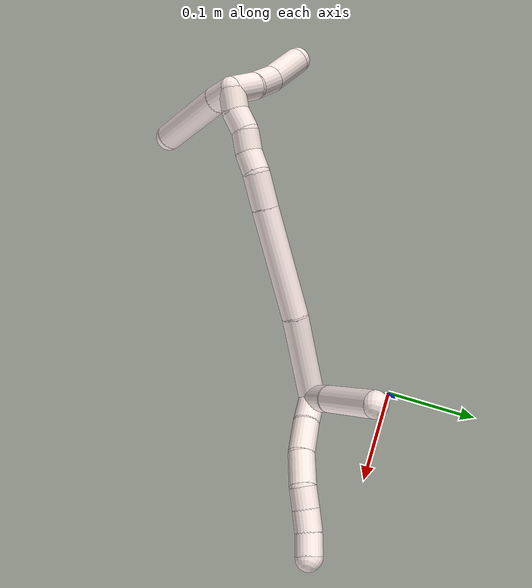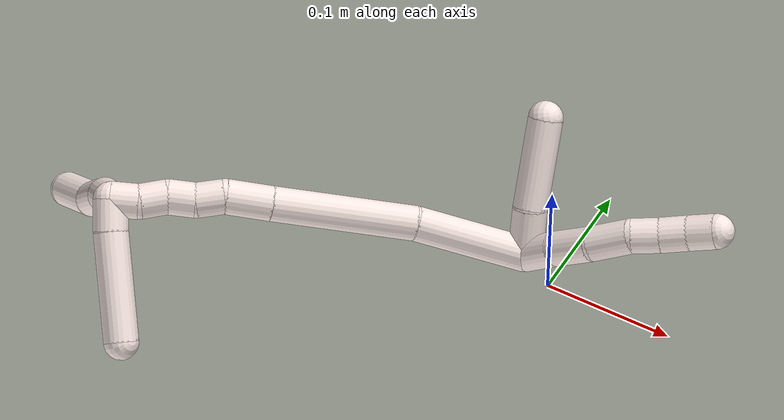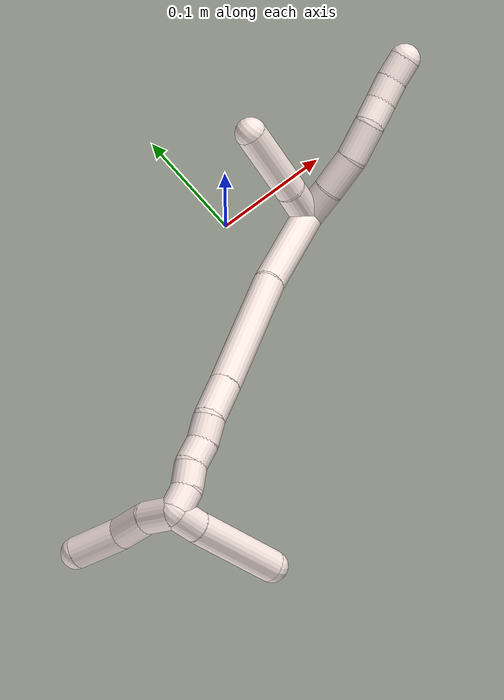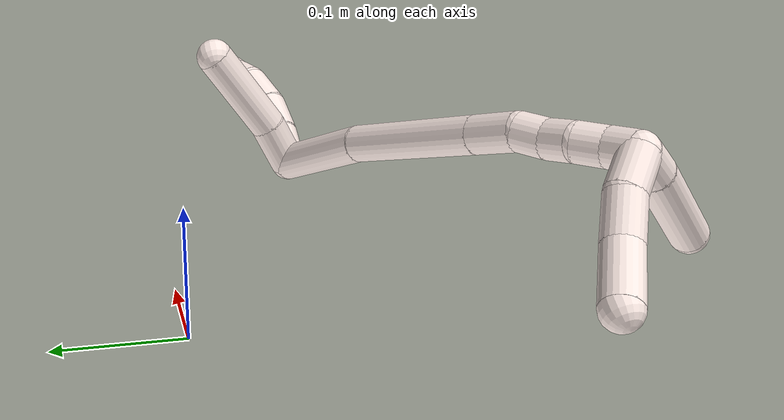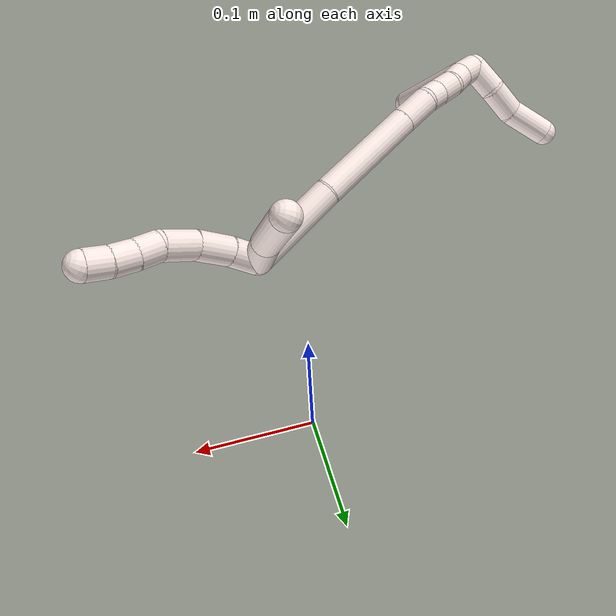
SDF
<sdf version="1.7">
 <world name="default">
  <model name="11">
   <static>0</static>
   <link name="11">
    <collision name="collision-cylinder-e_1_2_8">
     <pose>0.000323 -3.4e-05 -0.014005 3.13918 0.023061 2.93281</pose>
     <geometry><cylinder><radius>0.0125</radius><length>0.028017</length></cylinder></geometry>
     <surface>
      <friction><ode><mu>1.16</mu><mu2>1.16</mu2><slip1>0</slip1><slip2>0</slip2></ode></friction>
      <contact><ode><kp>1e+06</kp><kd>1</kd><max_vel>0</max_vel><min_depth>0.001</min_depth></ode></contact>
     </surface>
    </collision>
    <visual name="visual-cylinder-e_1_2_8">
     <pose>0.000323 -3.4e-05 -0.014005 3.13918 0.023061 2.93281</pose>
     <geometry><cylinder><radius>0.0125</radius><length>0.028017</length></cylinder></geometry>
     <material><ambient>1 0.933333 0.909804 1</ambient></material>
    </visual>
    <collision name="collision-cylinder-e_2_8_9">
     <pose>0.002791 -0.000119 -0.04329 3.13822 0.139453 3.09333</pose>
     <geometry><cylinder><radius>0.0125</radius><length>0.030861</length></cylinder></geometry>
     <surface>
      <friction><ode><mu>1.16</mu><mu2>1.16</mu2><slip1>0</slip1><slip2>0</slip2></ode></friction>
      <contact><ode><kp>1e+06</kp><kd>1</kd><max_vel>0</max_vel><min_depth>0.001</min_depth></ode></contact>
     </surface>
    </collision>
    <visual name="visual-cylinder-e_2_8_9">
     <pose>0.002791 -0.000119 -0.04329 3.13822 0.139453 3.09333</pose>
     <geometry><cylinder><radius>0.0125</radius><length>0.030861</length></cylinder></geometry>
     <material><ambient>1 0.933333 0.909804 1</ambient></material>
    </visual>
    <collision name="collision-cylinder-e_3_9_10">
     <pose>0.009642 -0.002012 -0.07309 3.01547 0.311096 2.37599</pose>
     <geometry><cylinder><radius>0.0125</radius><length>0.030747</length></cylinder></geometry>
     <surface>
      <friction><ode><mu>1.16</mu><mu2>1.16</mu2><slip1>0</slip1><slip2>0</slip2></ode></friction>
      <contact><ode><kp>1e+06</kp><kd>1</kd><max_vel>0</max_vel><min_depth>0.001</min_depth></ode></contact>
     </surface>
    </collision>
    <visual name="visual-cylinder-e_3_9_10">
     <pose>0.009642 -0.002012 -0.07309 3.01547 0.311096 2.37599</pose>
     <geometry><cylinder><radius>0.0125</radius><length>0.030747</length></cylinder></geometry>
     <material><ambient>1 0.933333 0.909804 1</ambient></material>
    </visual>
    <collision name="collision-cylinder-e_4_10_11">
     <pose>0.02026 -0.004296 -0.095745 3.08714 0.627751 2.97418</pose>
     <geometry><cylinder><radius>0.0125</radius><length>0.020133</length></cylinder></geometry>
     <surface>
      <friction><ode><mu>1.16</mu><mu2>1.16</mu2><slip1>0</slip1><slip2>0</slip2></ode></friction>
      <contact><ode><kp>1e+06</kp><kd>1</kd><max_vel>0</max_vel><min_depth>0.001</min_depth></ode></contact>
     </surface>
    </collision>
    <visual name="visual-cylinder-e_4_10_11">
     <pose>0.02026 -0.004296 -0.095745 3.08714 0.627751 2.97418</pose>
     <geometry><cylinder><radius>0.0125</radius><length>0.020133</length></cylinder></geometry>
     <material><ambient>1 0.933333 0.909804 1</ambient></material>
    </visual>
    <collision name="collision-cylinder-e_5_11_12">
     <pose>0.031384 -0.005483 -0.112509 3.05567 0.541697 2.83439</pose>
     <geometry><cylinder><radius>0.0125</radius><length>0.020216</length></cylinder></geometry>
     <surface>
      <friction><ode><mu>1.16</mu><mu2>1.16</mu2><slip1>0</slip1><slip2>0</slip2></ode></friction>
      <contact><ode><kp>1e+06</kp><kd>1</kd><max_vel>0</max_vel><min_depth>0.001</min_depth></ode></contact>
     </surface>
    </collision>
    <visual name="visual-cylinder-e_5_11_12">
     <pose>0.031384 -0.005483 -0.112509 3.05567 0.541697 2.83439</pose>
     <geometry><cylinder><radius>0.0125</radius><length>0.020216</length></cylinder></geometry>
     <material><ambient>1 0.933333 0.909804 1</ambient></material>
    </visual>
    <collision name="collision-cylinder-e_6_12_6">
     <pose>0.040687 -0.006417 -0.130275 3.12066 0.420939 3.04366</pose>
     <geometry><cylinder><radius>0.0125</radius><length>0.020026</length></cylinder></geometry>
     <surface>
      <friction><ode><mu>1.16</mu><mu2>1.16</mu2><slip1>0</slip1><slip2>0</slip2></ode></friction>
      <contact><ode><kp>1e+06</kp><kd>1</kd><max_vel>0</max_vel><min_depth>0.001</min_depth></ode></contact>
     </surface>
    </collision>
    <visual name="visual-cylinder-e_6_12_6">
     <pose>0.040687 -0.006417 -0.130275 3.12066 0.420939 3.04366</pose>
     <geometry><cylinder><radius>0.0125</radius><length>0.020026</length></cylinder></geometry>
     <material><ambient>1 0.933333 0.909804 1</ambient></material>
    </visual>
    <collision name="collision-cylinder-e_1_2_13">
     <pose>-0.006501 -0.014275 -0.007456 2.05216 -0.383687 -0.620479</pose>
     <geometry><cylinder><radius>0.0125</radius><length>0.034735</length></cylinder></geometry>
     <surface>
      <friction><ode><mu>1.16</mu><mu2>1.16</mu2><slip1>0</slip1><slip2>0</slip2></ode></friction>
      <contact><ode><kp>1e+06</kp><kd>1</kd><max_vel>0</max_vel><min_depth>0.001</min_depth></ode></contact>
     </surface>
    </collision>
    <visual name="visual-cylinder-e_1_2_13">
     <pose>-0.006501 -0.014275 -0.007456 2.05216 -0.383687 -0.620479</pose>
     <geometry><cylinder><radius>0.0125</radius><length>0.034735</length></cylinder></geometry>
     <material><ambient>1 0.933333 0.909804 1</ambient></material>
    </visual>
    <collision name="collision-cylinder-e_2_13_5">
     <pose>-0.020923 -0.057477 -0.02777 1.98904 -0.245169 -0.37472</pose>
     <geometry><cylinder><radius>0.0125</radius><length>0.065265</length></cylinder></geometry>
     <surface>
      <friction><ode><mu>1.16</mu><mu2>1.16</mu2><slip1>0</slip1><slip2>0</slip2></ode></friction>
      <contact><ode><kp>1e+06</kp><kd>1</kd><max_vel>0</max_vel><min_depth>0.001</min_depth></ode></contact>
     </surface>
    </collision>
    <visual name="visual-cylinder-e_2_13_5">
     <pose>-0.020923 -0.057477 -0.02777 1.98904 -0.245169 -0.37472</pose>
     <geometry><cylinder><radius>0.0125</radius><length>0.065265</length></cylinder></geometry>
     <material><ambient>1 0.933333 0.909804 1</ambient></material>
    </visual>
    <collision name="collision-cylinder-e_1_2_14">
     <pose>-0.036522 -0.005646 0.019062 0.287948 -1.07231 -0.17187</pose>
     <geometry><cylinder><radius>0.0125</radius><length>0.083164</length></cylinder></geometry>
     <surface>
      <friction><ode><mu>1.16</mu><mu2>1.16</mu2><slip1>0</slip1><slip2>0</slip2></ode></friction>
      <contact><ode><kp>1e+06</kp><kd>1</kd><max_vel>0</max_vel><min_depth>0.001</min_depth></ode></contact>
     </surface>
    </collision>
    <visual name="visual-cylinder-e_1_2_14">
     <pose>-0.036522 -0.005646 0.019062 0.287948 -1.07231 -0.17187</pose>
     <geometry><cylinder><radius>0.0125</radius><length>0.083164</length></cylinder></geometry>
     <material><ambient>1 0.933333 0.909804 1</ambient></material>
    </visual>
    <collision name="collision-cylinder-e_2_14_15">
     <pose>-0.116797 -0.012288 0.065693 0.036135 -1.00824 -0.019936</pose>
     <geometry><cylinder><radius>0.0125</radius><length>0.103448</length></cylinder></geometry>
     <surface>
      <friction><ode><mu>1.16</mu><mu2>1.16</mu2><slip1>0</slip1><slip2>0</slip2></ode></friction>
      <contact><ode><kp>1e+06</kp><kd>1</kd><max_vel>0</max_vel><min_depth>0.001</min_depth></ode></contact>
     </surface>
    </collision>
    <visual name="visual-cylinder-e_2_14_15">
     <pose>-0.116797 -0.012288 0.065693 0.036135 -1.00824 -0.019936</pose>
     <geometry><cylinder><radius>0.0125</radius><length>0.103448</length></cylinder></geometry>
     <material><ambient>1 0.933333 0.909804 1</ambient></material>
    </visual>
    <collision name="collision-cylinder-e_3_15_16">
     <pose>-0.174475 -0.013912 0.102174 0.070306 -1.00039 -0.038437</pose>
     <geometry><cylinder><radius>0.0125</radius><length>0.03309</length></cylinder></geometry>
     <surface>
      <friction><ode><mu>1.16</mu><mu2>1.16</mu2><slip1>0</slip1><slip2>0</slip2></ode></friction>
      <contact><ode><kp>1e+06</kp><kd>1</kd><max_vel>0</max_vel><min_depth>0.001</min_depth></ode></contact>
     </surface>
    </collision>
    <visual name="visual-cylinder-e_3_15_16">
     <pose>-0.174475 -0.013912 0.102174 0.070306 -1.00039 -0.038437</pose>
     <geometry><cylinder><radius>0.0125</radius><length>0.03309</length></cylinder></geometry>
     <material><ambient>1 0.933333 0.909804 1</ambient></material>
    </visual>
    <collision name="collision-cylinder-e_4_16_17">
     <pose>-0.195373 -0.012542 0.118148 -0.275661 -0.759759 0.110653</pose>
     <geometry><cylinder><radius>0.0125</radius><length>0.020247</length></cylinder></geometry>
     <surface>
      <friction><ode><mu>1.16</mu><mu2>1.16</mu2><slip1>0</slip1><slip2>0</slip2></ode></friction>
      <contact><ode><kp>1e+06</kp><kd>1</kd><max_vel>0</max_vel><min_depth>0.001</min_depth></ode></contact>
     </surface>
    </collision>
    <visual name="visual-cylinder-e_4_16_17">
     <pose>-0.195373 -0.012542 0.118148 -0.275661 -0.759759 0.110653</pose>
     <geometry><cylinder><radius>0.0125</radius><length>0.020247</length></cylinder></geometry>
     <material><ambient>1 0.933333 0.909804 1</ambient></material>
    </visual>
    <collision name="collision-cylinder-e_5_17_18">
     <pose>-0.209909 -0.011041 0.131749 0.075863 -0.8565 -0.034645</pose>
     <geometry><cylinder><radius>0.0125</radius><length>0.02002</length></cylinder></geometry>
     <surface>
      <friction><ode><mu>1.16</mu><mu2>1.16</mu2><slip1>0</slip1><slip2>0</slip2></ode></friction>
      <contact><ode><kp>1e+06</kp><kd>1</kd><max_vel>0</max_vel><min_depth>0.001</min_depth></ode></contact>
     </surface>
    </collision>
    <visual name="visual-cylinder-e_5_17_18">
     <pose>-0.209909 -0.011041 0.131749 0.075863 -0.8565 -0.034645</pose>
     <geometry><cylinder><radius>0.0125</radius><length>0.02002</length></cylinder></geometry>
     <material><ambient>1 0.933333 0.909804 1</ambient></material>
    </visual>
    <collision name="collision-cylinder-e_6_18_19">
     <pose>-0.224947 -0.008905 0.144411 -0.406205 -0.842606 0.184059</pose>
     <geometry><cylinder><radius>0.0125</radius><length>0.020029</length></cylinder></geometry>
     <surface>
      <friction><ode><mu>1.16</mu><mu2>1.16</mu2><slip1>0</slip1><slip2>0</slip2></ode></friction>
      <contact><ode><kp>1e+06</kp><kd>1</kd><max_vel>0</max_vel><min_depth>0.001</min_depth></ode></contact>
     </surface>
    </collision>
    <visual name="visual-cylinder-e_6_18_19">
     <pose>-0.224947 -0.008905 0.144411 -0.406205 -0.842606 0.184059</pose>
     <geometry><cylinder><radius>0.0125</radius><length>0.020029</length></cylinder></geometry>
     <material><ambient>1 0.933333 0.909804 1</ambient></material>
    </visual>
    <collision name="collision-cylinder-e_7_19_1">
     <pose>-0.239721 -0.006507 0.157366 0.034436 -0.81806 -0.014929</pose>
     <geometry><cylinder><radius>0.0125</radius><length>0.020001</length></cylinder></geometry>
     <surface>
      <friction><ode><mu>1.16</mu><mu2>1.16</mu2><slip1>0</slip1><slip2>0</slip2></ode></friction>
      <contact><ode><kp>1e+06</kp><kd>1</kd><max_vel>0</max_vel><min_depth>0.001</min_depth></ode></contact>
     </surface>
    </collision>
    <visual name="visual-cylinder-e_7_19_1">
     <pose>-0.239721 -0.006507 0.157366 0.034436 -0.81806 -0.014929</pose>
     <geometry><cylinder><radius>0.0125</radius><length>0.020001</length></cylinder></geometry>
     <material><ambient>1 0.933333 0.909804 1</ambient></material>
    </visual>
    <collision name="collision-cylinder-e_1_1_20">
     <pose>-0.244514 0.004307 0.165545 -1.44951 0.221363 -0.196192</pose>
     <geometry><cylinder><radius>0.0125</radius><length>0.022818</length></cylinder></geometry>
     <surface>
      <friction><ode><mu>1.16</mu><mu2>1.16</mu2><slip1>0</slip1><slip2>0</slip2></ode></friction>
      <contact><ode><kp>1e+06</kp><kd>1</kd><max_vel>0</max_vel><min_depth>0.001</min_depth></ode></contact>
     </surface>
    </collision>
    <visual name="visual-cylinder-e_1_1_20">
     <pose>-0.244514 0.004307 0.165545 -1.44951 0.221363 -0.196192</pose>
     <geometry><cylinder><radius>0.0125</radius><length>0.022818</length></cylinder></geometry>
     <material><ambient>1 0.933333 0.909804 1</ambient></material>
    </visual>
    <collision name="collision-cylinder-e_2_20_4">
     <pose>-0.230943 0.052223 0.169657 -1.49594 0.290828 -0.270099</pose>
     <geometry><cylinder><radius>0.0125</radius><length>0.077182</length></cylinder></geometry>
     <surface>
      <friction><ode><mu>1.16</mu><mu2>1.16</mu2><slip1>0</slip1><slip2>0</slip2></ode></friction>
      <contact><ode><kp>1e+06</kp><kd>1</kd><max_vel>0</max_vel><min_depth>0.001</min_depth></ode></contact>
     </surface>
    </collision>
    <visual name="visual-cylinder-e_2_20_4">
     <pose>-0.230943 0.052223 0.169657 -1.49594 0.290828 -0.270099</pose>
     <geometry><cylinder><radius>0.0125</radius><length>0.077182</length></cylinder></geometry>
     <material><ambient>1 0.933333 0.909804 1</ambient></material>
    </visual>
    <collision name="collision-cylinder-e_1_1_21">
     <pose>-0.240315 -0.011666 0.175597 0.407792 0.495099 0.10442</pose>
     <geometry><cylinder><radius>0.0125</radius><length>0.028222</length></cylinder></geometry>
     <surface>
      <friction><ode><mu>1.16</mu><mu2>1.16</mu2><slip1>0</slip1><slip2>0</slip2></ode></friction>
      <contact><ode><kp>1e+06</kp><kd>1</kd><max_vel>0</max_vel><min_depth>0.001</min_depth></ode></contact>
     </surface>
    </collision>
    <visual name="visual-cylinder-e_1_1_21">
     <pose>-0.240315 -0.011666 0.175597 0.407792 0.495099 0.10442</pose>
     <geometry><cylinder><radius>0.0125</radius><length>0.028222</length></cylinder></geometry>
     <material><ambient>1 0.933333 0.909804 1</ambient></material>
    </visual>
    <collision name="collision-cylinder-e_2_21_22">
     <pose>-0.227786 -0.018593 0.20105 0.141542 0.389302 0.02795</pose>
     <geometry><cylinder><radius>0.0125</radius><length>0.030689</length></cylinder></geometry>
     <surface>
      <friction><ode><mu>1.16</mu><mu2>1.16</mu2><slip1>0</slip1><slip2>0</slip2></ode></friction>
      <contact><ode><kp>1e+06</kp><kd>1</kd><max_vel>0</max_vel><min_depth>0.001</min_depth></ode></contact>
     </surface>
    </collision>
    <visual name="visual-cylinder-e_2_21_22">
     <pose>-0.227786 -0.018593 0.20105 0.141542 0.389302 0.02795</pose>
     <geometry><cylinder><radius>0.0125</radius><length>0.030689</length></cylinder></geometry>
     <material><ambient>1 0.933333 0.909804 1</ambient></material>
    </visual>
    <collision name="collision-cylinder-e_3_22_3">
     <pose>-0.218336 -0.02813 0.23387 0.381746 0.177446 0.034374</pose>
     <geometry><cylinder><radius>0.0125</radius><length>0.041089</length></cylinder></geometry>
     <surface>
      <friction><ode><mu>1.16</mu><mu2>1.16</mu2><slip1>0</slip1><slip2>0</slip2></ode></friction>
      <contact><ode><kp>1e+06</kp><kd>1</kd><max_vel>0</max_vel><min_depth>0.001</min_depth></ode></contact>
     </surface>
    </collision>
    <visual name="visual-cylinder-e_3_22_3">
     <pose>-0.218336 -0.02813 0.23387 0.381746 0.177446 0.034374</pose>
     <geometry><cylinder><radius>0.0125</radius><length>0.041089</length></cylinder></geometry>
     <material><ambient>1 0.933333 0.909804 1</ambient></material>
    </visual>
    <collision name="collision-sphere-3">
     <pose>-0.21471 -0.035663 0.252636 0 -0 0</pose>
     <geometry><sphere><radius>0.0125</radius></sphere></geometry>
     <surface>
      <friction><ode><mu>1.16</mu><mu2>1.16</mu2><slip1>0</slip1><slip2>0</slip2></ode></friction>
      <contact><ode><kp>1e+06</kp><kd>1</kd><max_vel>0</max_vel><min_depth>0.001</min_depth></ode></contact>
     </surface>
    </collision>
    <visual name="visual-sphere-3">
     <pose>-0.21471 -0.035663 0.252636 0 -0 0</pose>
     <geometry><sphere><radius>0.0125</radius></sphere></geometry>
     <material><ambient>1 0.933333 0.909804 1</ambient></material>
    </visual>
    <collision name="collision-sphere-22">
     <pose>-0.221962 -0.020596 0.215104 0 -0 0</pose>
     <geometry><sphere><radius>0.0125</radius></sphere></geometry>
     <surface>
      <friction><ode><mu>1.16</mu><mu2>1.16</mu2><slip1>0</slip1><slip2>0</slip2></ode></friction>
      <contact><ode><kp>1e+06</kp><kd>1</kd><max_vel>0</max_vel><min_depth>0.001</min_depth></ode></contact>
     </surface>
    </collision>
    <visual name="visual-sphere-22">
     <pose>-0.221962 -0.020596 0.215104 0 -0 0</pose>
     <geometry><sphere><radius>0.0125</radius></sphere></geometry>
     <material><ambient>1 0.933333 0.909804 1</ambient></material>
    </visual>
    <collision name="collision-sphere-21">
     <pose>-0.23361 -0.016591 0.186995 0 -0 0</pose>
     <geometry><sphere><radius>0.0125</radius></sphere></geometry>
     <surface>
      <friction><ode><mu>1.16</mu><mu2>1.16</mu2><slip1>0</slip1><slip2>0</slip2></ode></friction>
      <contact><ode><kp>1e+06</kp><kd>1</kd><max_vel>0</max_vel><min_depth>0.001</min_depth></ode></contact>
     </surface>
    </collision>
    <visual name="visual-sphere-21">
     <pose>-0.23361 -0.016591 0.186995 0 -0 0</pose>
     <geometry><sphere><radius>0.0125</radius></sphere></geometry>
     <material><ambient>1 0.933333 0.909804 1</ambient></material>
    </visual>
    <collision name="collision-sphere-4">
     <pose>-0.219878 0.089089 0.172421 0 -0 0</pose>
     <geometry><sphere><radius>0.0125</radius></sphere></geometry>
     <surface>
      <friction><ode><mu>1.16</mu><mu2>1.16</mu2><slip1>0</slip1><slip2>0</slip2></ode></friction>
      <contact><ode><kp>1e+06</kp><kd>1</kd><max_vel>0</max_vel><min_depth>0.001</min_depth></ode></contact>
     </surface>
    </collision>
    <visual name="visual-sphere-4">
     <pose>-0.219878 0.089089 0.172421 0 -0 0</pose>
     <geometry><sphere><radius>0.0125</radius></sphere></geometry>
     <material><ambient>1 0.933333 0.909804 1</ambient></material>
    </visual>
    <collision name="collision-sphere-20">
     <pose>-0.242009 0.015356 0.166892 0 -0 0</pose>
     <geometry><sphere><radius>0.0125</radius></sphere></geometry>
     <surface>
      <friction><ode><mu>1.16</mu><mu2>1.16</mu2><slip1>0</slip1><slip2>0</slip2></ode></friction>
      <contact><ode><kp>1e+06</kp><kd>1</kd><max_vel>0</max_vel><min_depth>0.001</min_depth></ode></contact>
     </surface>
    </collision>
    <visual name="visual-sphere-20">
     <pose>-0.242009 0.015356 0.166892 0 -0 0</pose>
     <geometry><sphere><radius>0.0125</radius></sphere></geometry>
     <material><ambient>1 0.933333 0.909804 1</ambient></material>
    </visual>
    <collision name="collision-sphere-12">
     <pose>0.036595 -0.006226 -0.121138 0 -0 0</pose>
     <geometry><sphere><radius>0.0125</radius></sphere></geometry>
     <surface>
      <friction><ode><mu>1.16</mu><mu2>1.16</mu2><slip1>0</slip1><slip2>0</slip2></ode></friction>
      <contact><ode><kp>1e+06</kp><kd>1</kd><max_vel>0</max_vel><min_depth>0.001</min_depth></ode></contact>
     </surface>
    </collision>
    <visual name="visual-sphere-12">
     <pose>0.036595 -0.006226 -0.121138 0 -0 0</pose>
     <geometry><sphere><radius>0.0125</radius></sphere></geometry>
     <material><ambient>1 0.933333 0.909804 1</ambient></material>
    </visual>
    <collision name="collision-sphere-11">
     <pose>0.026172 -0.00474 -0.10388 0 -0 0</pose>
     <geometry><sphere><radius>0.0125</radius></sphere></geometry>
     <surface>
      <friction><ode><mu>1.16</mu><mu2>1.16</mu2><slip1>0</slip1><slip2>0</slip2></ode></friction>
      <contact><ode><kp>1e+06</kp><kd>1</kd><max_vel>0</max_vel><min_depth>0.001</min_depth></ode></contact>
     </surface>
    </collision>
    <visual name="visual-sphere-11">
     <pose>0.026172 -0.00474 -0.10388 0 -0 0</pose>
     <geometry><sphere><radius>0.0125</radius></sphere></geometry>
     <material><ambient>1 0.933333 0.909804 1</ambient></material>
    </visual>
    <collision name="collision-sphere-10">
     <pose>0.014348 -0.003853 -0.08761 0 -0 0</pose>
     <geometry><sphere><radius>0.0125</radius></sphere></geometry>
     <surface>
      <friction><ode><mu>1.16</mu><mu2>1.16</mu2><slip1>0</slip1><slip2>0</slip2></ode></friction>
      <contact><ode><kp>1e+06</kp><kd>1</kd><max_vel>0</max_vel><min_depth>0.001</min_depth></ode></contact>
     </surface>
    </collision>
    <visual name="visual-sphere-10">
     <pose>0.014348 -0.003853 -0.08761 0 -0 0</pose>
     <geometry><sphere><radius>0.0125</radius></sphere></geometry>
     <material><ambient>1 0.933333 0.909804 1</ambient></material>
    </visual>
    <collision name="collision-sphere-9">
     <pose>0.004936 -0.000171 -0.058571 0 -0 0</pose>
     <geometry><sphere><radius>0.0125</radius></sphere></geometry>
     <surface>
      <friction><ode><mu>1.16</mu><mu2>1.16</mu2><slip1>0</slip1><slip2>0</slip2></ode></friction>
      <contact><ode><kp>1e+06</kp><kd>1</kd><max_vel>0</max_vel><min_depth>0.001</min_depth></ode></contact>
     </surface>
    </collision>
    <visual name="visual-sphere-9">
     <pose>0.004936 -0.000171 -0.058571 0 -0 0</pose>
     <geometry><sphere><radius>0.0125</radius></sphere></geometry>
     <material><ambient>1 0.933333 0.909804 1</ambient></material>
    </visual>
    <collision name="collision-sphere-2">
     <geometry><sphere><radius>0.0125</radius></sphere></geometry>
     <surface>
      <friction><ode><mu>1.16</mu><mu2>1.16</mu2><slip1>0</slip1><slip2>0</slip2></ode></friction>
      <contact><ode><kp>1e+06</kp><kd>1</kd><max_vel>0</max_vel><min_depth>0.001</min_depth></ode></contact>
     </surface>
    </collision>
    <visual name="visual-sphere-2">
     <geometry><sphere><radius>0.0125</radius></sphere></geometry>
     <material><ambient>1 0.933333 0.909804 1</ambient></material>
    </visual>
    <collision name="collision-sphere-19">
     <pose>-0.232422 -0.006271 0.150533 0 -0 0</pose>
     <geometry><sphere><radius>0.0125</radius></sphere></geometry>
     <surface>
      <friction><ode><mu>1.16</mu><mu2>1.16</mu2><slip1>0</slip1><slip2>0</slip2></ode></friction>
      <contact><ode><kp>1e+06</kp><kd>1</kd><max_vel>0</max_vel><min_depth>0.001</min_depth></ode></contact>
     </surface>
    </collision>
    <visual name="visual-sphere-19">
     <pose>-0.232422 -0.006271 0.150533 0 -0 0</pose>
     <geometry><sphere><radius>0.0125</radius></sphere></geometry>
     <material><ambient>1 0.933333 0.909804 1</ambient></material>
    </visual>
    <collision name="collision-sphere-8">
     <pose>0.000646 -6.8e-05 -0.02801 0 -0 0</pose>
     <geometry><sphere><radius>0.0125</radius></sphere></geometry>
     <surface>
      <friction><ode><mu>1.16</mu><mu2>1.16</mu2><slip1>0</slip1><slip2>0</slip2></ode></friction>
      <contact><ode><kp>1e+06</kp><kd>1</kd><max_vel>0</max_vel><min_depth>0.001</min_depth></ode></contact>
     </surface>
    </collision>
    <visual name="visual-sphere-8">
     <pose>0.000646 -6.8e-05 -0.02801 0 -0 0</pose>
     <geometry><sphere><radius>0.0125</radius></sphere></geometry>
     <material><ambient>1 0.933333 0.909804 1</ambient></material>
    </visual>
    <collision name="collision-sphere-6">
     <pose>0.044778 -0.006609 -0.139412 0 -0 0</pose>
     <geometry><sphere><radius>0.0125</radius></sphere></geometry>
     <surface>
      <friction><ode><mu>1.16</mu><mu2>1.16</mu2><slip1>0</slip1><slip2>0</slip2></ode></friction>
      <contact><ode><kp>1e+06</kp><kd>1</kd><max_vel>0</max_vel><min_depth>0.001</min_depth></ode></contact>
     </surface>
    </collision>
    <visual name="visual-sphere-6">
     <pose>0.044778 -0.006609 -0.139412 0 -0 0</pose>
     <geometry><sphere><radius>0.0125</radius></sphere></geometry>
     <material><ambient>1 0.933333 0.909804 1</ambient></material>
    </visual>
    <collision name="collision-sphere-13">
     <pose>-0.013003 -0.028549 -0.014913 0 -0 0</pose>
     <geometry><sphere><radius>0.0125</radius></sphere></geometry>
     <surface>
      <friction><ode><mu>1.16</mu><mu2>1.16</mu2><slip1>0</slip1><slip2>0</slip2></ode></friction>
      <contact><ode><kp>1e+06</kp><kd>1</kd><max_vel>0</max_vel><min_depth>0.001</min_depth></ode></contact>
     </surface>
    </collision>
    <visual name="visual-sphere-13">
     <pose>-0.013003 -0.028549 -0.014913 0 -0 0</pose>
     <geometry><sphere><radius>0.0125</radius></sphere></geometry>
     <material><ambient>1 0.933333 0.909804 1</ambient></material>
    </visual>
    <collision name="collision-sphere-5">
     <pose>-0.028844 -0.086405 -0.040628 0 -0 0</pose>
     <geometry><sphere><radius>0.0125</radius></sphere></geometry>
     <surface>
      <friction><ode><mu>1.16</mu><mu2>1.16</mu2><slip1>0</slip1><slip2>0</slip2></ode></friction>
      <contact><ode><kp>1e+06</kp><kd>1</kd><max_vel>0</max_vel><min_depth>0.001</min_depth></ode></contact>
     </surface>
    </collision>
    <visual name="visual-sphere-5">
     <pose>-0.028844 -0.086405 -0.040628 0 -0 0</pose>
     <geometry><sphere><radius>0.0125</radius></sphere></geometry>
     <material><ambient>1 0.933333 0.909804 1</ambient></material>
    </visual>
    <collision name="collision-sphere-14">
     <pose>-0.073044 -0.011291 0.038124 0 -0 0</pose>
     <geometry><sphere><radius>0.0125</radius></sphere></geometry>
     <surface>
      <friction><ode><mu>1.16</mu><mu2>1.16</mu2><slip1>0</slip1><slip2>0</slip2></ode></friction>
      <contact><ode><kp>1e+06</kp><kd>1</kd><max_vel>0</max_vel><min_depth>0.001</min_depth></ode></contact>
     </surface>
    </collision>
    <visual name="visual-sphere-14">
     <pose>-0.073044 -0.011291 0.038124 0 -0 0</pose>
     <geometry><sphere><radius>0.0125</radius></sphere></geometry>
     <material><ambient>1 0.933333 0.909804 1</ambient></material>
    </visual>
    <collision name="collision-sphere-15">
     <pose>-0.16055 -0.013285 0.093262 0 -0 0</pose>
     <geometry><sphere><radius>0.0125</radius></sphere></geometry>
     <surface>
      <friction><ode><mu>1.16</mu><mu2>1.16</mu2><slip1>0</slip1><slip2>0</slip2></ode></friction>
      <contact><ode><kp>1e+06</kp><kd>1</kd><max_vel>0</max_vel><min_depth>0.001</min_depth></ode></contact>
     </surface>
    </collision>
    <visual name="visual-sphere-15">
     <pose>-0.16055 -0.013285 0.093262 0 -0 0</pose>
     <geometry><sphere><radius>0.0125</radius></sphere></geometry>
     <material><ambient>1 0.933333 0.909804 1</ambient></material>
    </visual>
    <collision name="collision-sphere-16">
     <pose>-0.188401 -0.01454 0.111086 0 -0 0</pose>
     <geometry><sphere><radius>0.0125</radius></sphere></geometry>
     <surface>
      <friction><ode><mu>1.16</mu><mu2>1.16</mu2><slip1>0</slip1><slip2>0</slip2></ode></friction>
      <contact><ode><kp>1e+06</kp><kd>1</kd><max_vel>0</max_vel><min_depth>0.001</min_depth></ode></contact>
     </surface>
    </collision>
    <visual name="visual-sphere-16">
     <pose>-0.188401 -0.01454 0.111086 0 -0 0</pose>
     <geometry><sphere><radius>0.0125</radius></sphere></geometry>
     <material><ambient>1 0.933333 0.909804 1</ambient></material>
    </visual>
    <collision name="collision-sphere-17">
     <pose>-0.202346 -0.010544 0.125211 0 -0 0</pose>
     <geometry><sphere><radius>0.0125</radius></sphere></geometry>
     <surface>
      <friction><ode><mu>1.16</mu><mu2>1.16</mu2><slip1>0</slip1><slip2>0</slip2></ode></friction>
      <contact><ode><kp>1e+06</kp><kd>1</kd><max_vel>0</max_vel><min_depth>0.001</min_depth></ode></contact>
     </surface>
    </collision>
    <visual name="visual-sphere-17">
     <pose>-0.202346 -0.010544 0.125211 0 -0 0</pose>
     <geometry><sphere><radius>0.0125</radius></sphere></geometry>
     <material><ambient>1 0.933333 0.909804 1</ambient></material>
    </visual>
    <collision name="collision-sphere-18">
     <pose>-0.217473 -0.011538 0.138288 0 -0 0</pose>
     <geometry><sphere><radius>0.0125</radius></sphere></geometry>
     <surface>
      <friction><ode><mu>1.16</mu><mu2>1.16</mu2><slip1>0</slip1><slip2>0</slip2></ode></friction>
      <contact><ode><kp>1e+06</kp><kd>1</kd><max_vel>0</max_vel><min_depth>0.001</min_depth></ode></contact>
     </surface>
    </collision>
    <visual name="visual-sphere-18">
     <pose>-0.217473 -0.011538 0.138288 0 -0 0</pose>
     <geometry><sphere><radius>0.0125</radius></sphere></geometry>
     <material><ambient>1 0.933333 0.909804 1</ambient></material>
    </visual>
    <collision name="collision-sphere-1">
     <pose>-0.247019 -0.006742 0.164198 0 -0 0</pose>
     <geometry><sphere><radius>0.0125</radius></sphere></geometry>
     <surface>
      <friction><ode><mu>1.16</mu><mu2>1.16</mu2><slip1>0</slip1><slip2>0</slip2></ode></friction>
      <contact><ode><kp>1e+06</kp><kd>1</kd><max_vel>0</max_vel><min_depth>0.001</min_depth></ode></contact>
     </surface>
    </collision>
    <visual name="visual-sphere-1">
     <pose>-0.247019 -0.006742 0.164198 0 -0 0</pose>
     <geometry><sphere><radius>0.0125</radius></sphere></geometry>
     <material><ambient>1 0.933333 0.909804 1</ambient></material>
    </visual>
    <inertial>
     <pose>-0.111789 -0.007401 0.063441 0 -0 0</pose>
     <mass>0.75</mass>
     <inertia>
      <ixx>0.000112</ixx>
      <ixy>0</ixy>
      <ixz>0</ixz>
      <iyy>0.000156</iyy>
      <iyz>0</iyz>
      <izz>0.000127</izz>
     </inertia>
    </inertial>
   </link>
   <pose>0.020171 -0.079864 0.123829 -2.50686 0.700929 0.891714</pose>
  </model>
 </world>
</sdf>
